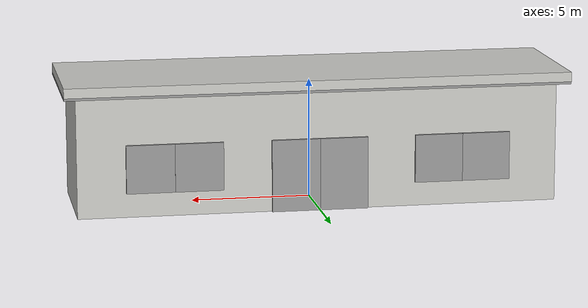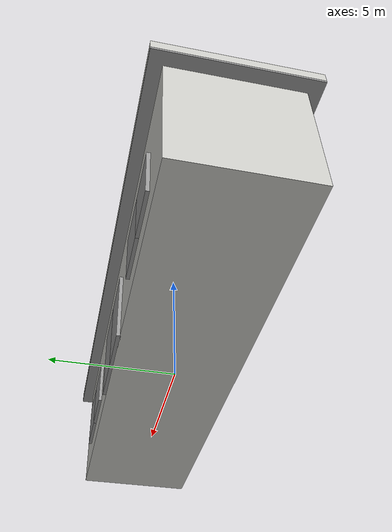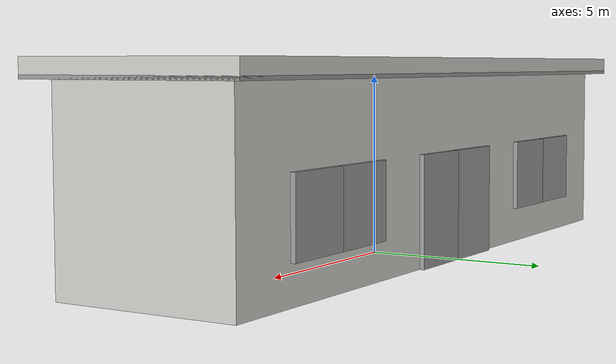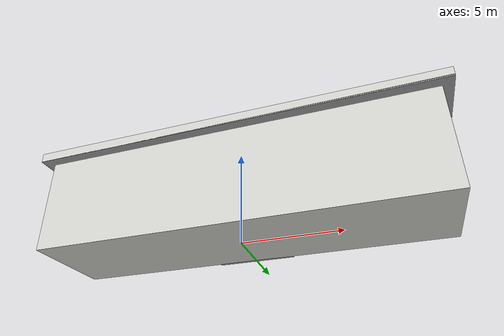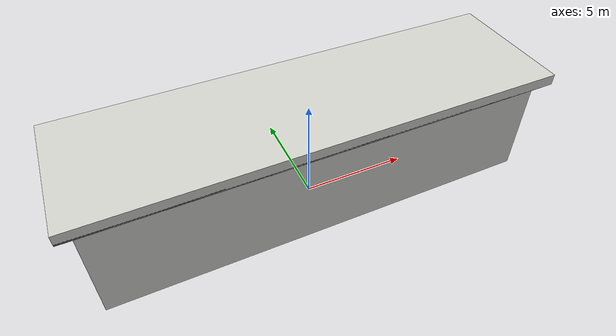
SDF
<?xml version='1.0'?>
<sdf version='1.6'>
  <model name='j_building_add'>
    <model name='j_building'>
      <pose frame=''>6e-06 -1e-06 0 0 -0 0</pose>
      <link name='Door_2'>
        <collision name='Door_2_Collision'>
          <geometry>
            <box>
              <size>2 0.17 3</size>
            </box>
          </geometry>
          <pose frame=''>0 0 1.5 0 -0 0</pose>
        </collision>
        <visual name='Door_2_Visual'>
          <pose frame=''>0 0 1.5 0 -0 0</pose>
          <geometry>
            <box>
              <size>2 0.17 3</size>
            </box>
          </geometry>
          <material>
            <script>
              <uri>file://media/materials/scripts/gazebo.material</uri>
              <name>Gazebo/Grey</name>
            </script>
          </material>
        </visual>
        <pose frame=''>-1 2.55 0 0 -0 3.13771</pose>
      </link>
      <link name='Door_3'>
        <collision name='Door_3_Collision'>
          <geometry>
            <box>
              <size>2 0.17 3</size>
            </box>
          </geometry>
          <pose frame=''>0 0 1.5 0 -0 0</pose>
        </collision>
        <visual name='Door_3_Visual'>
          <pose frame=''>0 0 1.5 0 -0 0</pose>
          <geometry>
            <box>
              <size>2 0.17 3</size>
            </box>
          </geometry>
          <material>
            <script>
              <uri>file://media/materials/scripts/gazebo.material</uri>
              <name>Gazebo/Grey</name>
            </script>
          </material>
        </visual>
        <pose frame=''>1 2.55 0 0 -0 3.13969</pose>
      </link>
      <link name='Floor_1'>
        <collision name='Floor_1_Collision'>
          <geometry>
            <box>
              <size>21 6 0.1</size>
            </box>
          </geometry>
          <pose frame=''>0 0 0.05 0 -0 0</pose>
        </collision>
        <visual name='Floor_1_Visual'>
          <pose frame=''>0 0 0.05 0 -0 0</pose>
          <geometry>
            <box>
              <size>21 6 0.1</size>
            </box>
          </geometry>
          <material>
            <script>
              <uri>file://media/materials/scripts/gazebo.material</uri>
              <name>Gazebo/Grey</name>
            </script>
            <ambient>1 1 1 1</ambient>
          </material>
        </visual>
        <pose frame=''>0 0 5 0 -0 0</pose>
      </link>
      <link name='Wall_10'>
        <collision name='Wall_10_Collision'>
          <geometry>
            <box>
              <size>21 6 0.5</size>
            </box>
          </geometry>
          <pose frame=''>0 0 0.25 0 -0 0</pose>
        </collision>
        <visual name='Wall_10_Visual'>
          <pose frame=''>0 0 0.25 0 -0 0</pose>
          <geometry>
            <box>
              <size>21 6 0.5</size>
            </box>
          </geometry>
          <material>
            <script>
              <uri>file://media/materials/scripts/gazebo.material</uri>
              <name>Gazebo/CeilingTiled</name>
            </script>
            <ambient>0.435294 0.796078 0.67451 1</ambient>
          </material>
        </visual>
        <pose frame=''>0 0 5 0 -0 0</pose>
      </link>
      <link name='Wall_7'>
        <collision name='Wall_7_Collision'>
          <geometry>
            <box>
              <size>20 5 5</size>
            </box>
          </geometry>
          <pose frame=''>0 0 2.5 0 -0 0</pose>
        </collision>
        <visual name='Wall_7_Visual'>
          <pose frame=''>0 0 2.5 0 -0 0</pose>
          <geometry>
            <box>
              <size>20 5 5</size>
            </box>
          </geometry>
          <material>
            <script>
              <uri>file://media/materials/scripts/gazebo.material</uri>
              <name>Gazebo/CeilingTiled</name>
            </script>
            <ambient>1 1 1 1</ambient>
          </material>
        </visual>
        <pose frame=''>0 0 0 0 -0 0</pose>
      </link>
      <link name='Window_6'>
        <collision name='Window_6_Collision'>
          <geometry>
            <box>
              <size>2 0.17 2</size>
            </box>
          </geometry>
          <pose frame=''>0 0 1 0 -0 0</pose>
        </collision>
        <visual name='Window_6_Visual'>
          <pose frame=''>0 0 1 0 -0 0</pose>
          <geometry>
            <box>
              <size>2 0.17 2</size>
            </box>
          </geometry>
          <material>
            <script>
              <uri>file://media/materials/scripts/gazebo.material</uri>
              <name>Gazebo/Grey</name>
            </script>
          </material>
        </visual>
        <pose frame=''>-7 2.55 1 0 -0 3.13833</pose>
      </link>
      <link name='Window_7'>
        <collision name='Window_7_Collision'>
          <geometry>
            <box>
              <size>2 0.17 2</size>
            </box>
          </geometry>
          <pose frame=''>0 0 1 0 -0 0</pose>
        </collision>
        <visual name='Window_7_Visual'>
          <pose frame=''>0 0 1 0 -0 0</pose>
          <geometry>
            <box>
              <size>2 0.17 2</size>
            </box>
          </geometry>
          <material>
            <script>
              <uri>file://media/materials/scripts/gazebo.material</uri>
              <name>Gazebo/Grey</name>
            </script>
          </material>
        </visual>
        <pose frame=''>-5 2.55 1 0 -0 3.14106</pose>
      </link>
      <link name='Window_8'>
        <collision name='Window_8_Collision'>
          <geometry>
            <box>
              <size>2 0.17 2</size>
            </box>
          </geometry>
          <pose frame=''>0 0 1 0 -0 0</pose>
        </collision>
        <visual name='Window_8_Visual'>
          <pose frame=''>0 0 1 0 -0 0</pose>
          <geometry>
            <box>
              <size>2 0.17 2</size>
            </box>
          </geometry>
          <material>
            <script>
              <uri>file://media/materials/scripts/gazebo.material</uri>
              <name>Gazebo/Grey</name>
            </script>
          </material>
        </visual>
        <pose frame=''>5 2.55 1 0 0 -3.13877</pose>
      </link>
      <link name='Window_9'>
        <collision name='Window_9_Collision'>
          <geometry>
            <box>
              <size>2 0.17 2</size>
            </box>
          </geometry>
          <pose frame=''>0 0 1 0 -0 0</pose>
        </collision>
        <visual name='Window_9_Visual'>
          <pose frame=''>0 0 1 0 -0 0</pose>
          <geometry>
            <box>
              <size>2 0.17 2</size>
            </box>
          </geometry>
          <material>
            <script>
              <uri>file://media/materials/scripts/gazebo.material</uri>
              <name>Gazebo/Grey</name>
            </script>
          </material>
        </visual>
        <pose frame=''>7 2.55 1 0 0 -3.13955</pose>
      </link>
      <static>1</static>
    </model>
    <static>0</static>
    <allow_auto_disable>1</allow_auto_disable>
  </model>
</sdf>
